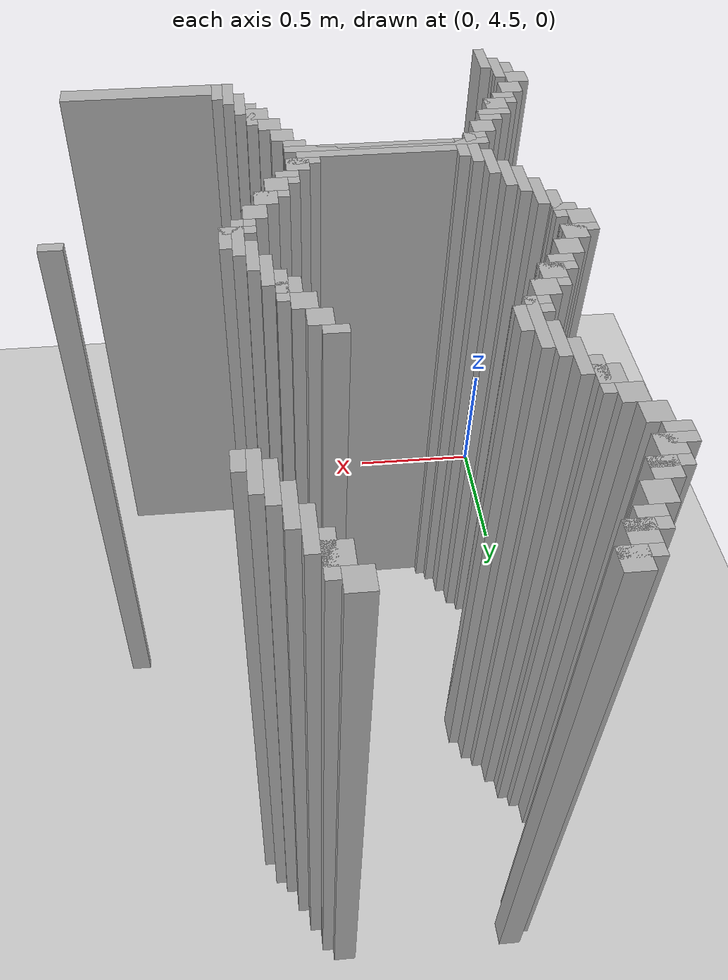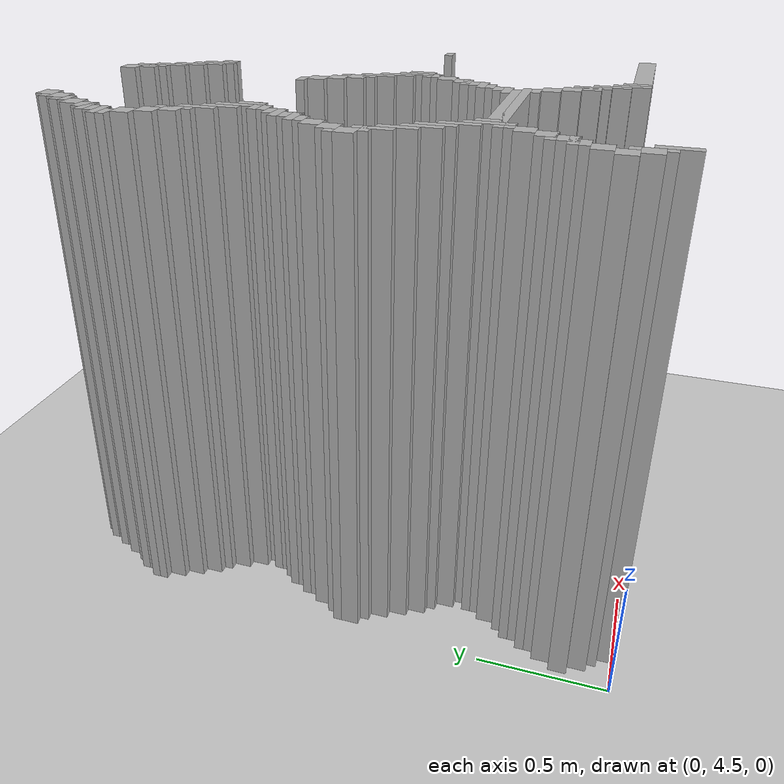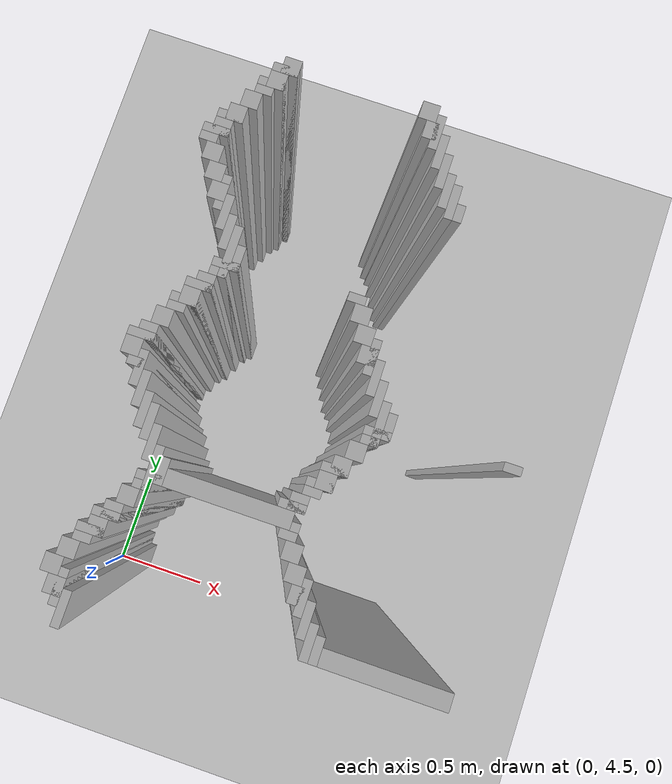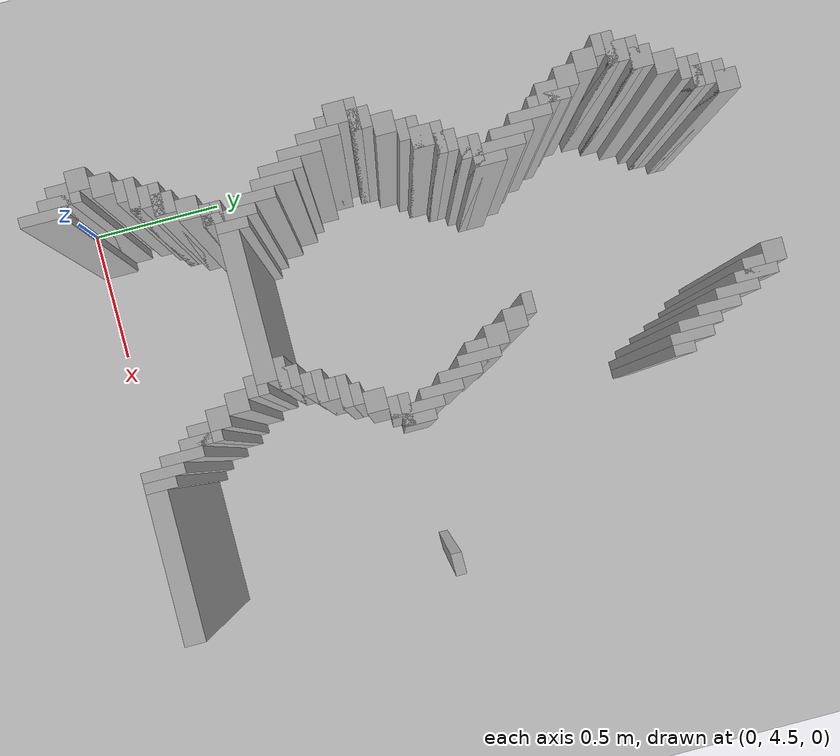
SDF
<sdf version="1.6">
 <world name="slam_world">
  <model name="ground_plane">
   <static>true</static>
   <link name="link">
    <collision name="collision">
     <geometry><plane><normal>0 0 1</normal><size>100 100</size></plane></geometry>
    </collision>
    <visual name="visual">
     <geometry><plane><normal>0 0 1</normal><size>100 100</size></plane></geometry>
     <material>
      <ambient>0.8 0.8 0.8 1</ambient>
      <diffuse>0.8 0.8 0.8 1</diffuse>
      <specular>0.8 0.8 0.8 1</specular>
     </material>
    </visual>
   </link>
  </model>
  <model name="wall_3553">
   <static>true</static>
   <pose>0.27842227378190254 6.751740139211137 1.0 0 0 0</pose>
   <link name="link">
    <collision name="collision">
     <geometry><box><size>0.06960556844547564 0.06960556844547564 2.0</size></box></geometry>
    </collision>
    <visual name="visual">
     <geometry><box><size>0.06960556844547564 0.06960556844547564 2.0</size></box></geometry>
     <material><ambient>0.5 0.5 0.5 1</ambient><diffuse>0.7 0.7 0.7 1</diffuse></material>
    </visual>
   </link>
  </model>
  <model name="wall_3554">
   <static>true</static>
   <pose>0.8352668213457076 6.751740139211137 1.0 0 0 0</pose>
   <link name="link">
    <collision name="collision">
     <geometry><box><size>0.06960556844547564 0.06960556844547564 2.0</size></box></geometry>
    </collision>
    <visual name="visual">
     <geometry><box><size>0.06960556844547564 0.06960556844547564 2.0</size></box></geometry>
     <material><ambient>0.5 0.5 0.5 1</ambient><diffuse>0.7 0.7 0.7 1</diffuse></material>
    </visual>
   </link>
  </model>
  <model name="wall_3566">
   <static>true</static>
   <pose>0.2610208816705336 6.734338747099768 1.0 0 0 0</pose>
   <link name="link">
    <collision name="collision">
     <geometry><box><size>0.10440835266821345 0.03480278422273782 2.0</size></box></geometry>
    </collision>
    <visual name="visual">
     <geometry><box><size>0.10440835266821345 0.03480278422273782 2.0</size></box></geometry>
     <material><ambient>0.5 0.5 0.5 1</ambient><diffuse>0.7 0.7 0.7 1</diffuse></material>
    </visual>
   </link>
  </model>
  <model name="wall_3567">
   <static>true</static>
   <pose>0.8874709976798143 6.682134570765661 1.0 0 0 0</pose>
   <link name="link">
    <collision name="collision">
     <geometry><box><size>0.03480278422273782 0.13921113689095127 2.0</size></box></geometry>
    </collision>
    <visual name="visual">
     <geometry><box><size>0.03480278422273782 0.13921113689095127 2.0</size></box></geometry>
     <material><ambient>0.5 0.5 0.5 1</ambient><diffuse>0.7 0.7 0.7 1</diffuse></material>
    </visual>
   </link>
  </model>
  <model name="wall_3579">
   <static>true</static>
   <pose>0.24361948955916474 6.682134570765661 1.0 0 0 0</pose>
   <link name="link">
    <collision name="collision">
     <geometry><box><size>0.06960556844547564 0.06960556844547564 2.0</size></box></geometry>
    </collision>
    <visual name="visual">
     <geometry><box><size>0.06960556844547564 0.06960556844547564 2.0</size></box></geometry>
     <material><ambient>0.5 0.5 0.5 1</ambient><diffuse>0.7 0.7 0.7 1</diffuse></material>
    </visual>
   </link>
  </model>
  <model name="wall_3580">
   <static>true</static>
   <pose>0.8700696055684455 6.682134570765661 1.0 0 0 0</pose>
   <link name="link">
    <collision name="collision">
     <geometry><box><size>0.06960556844547564 0.06960556844547564 2.0</size></box></geometry>
    </collision>
    <visual name="visual">
     <geometry><box><size>0.06960556844547564 0.06960556844547564 2.0</size></box></geometry>
     <material><ambient>0.5 0.5 0.5 1</ambient><diffuse>0.7 0.7 0.7 1</diffuse></material>
    </visual>
   </link>
  </model>
  <model name="wall_3592">
   <static>true</static>
   <pose>0.2262180974477958 6.664733178654292 1.0 0 0 0</pose>
   <link name="link">
    <collision name="collision">
     <geometry><box><size>0.10440835266821345 0.03480278422273782 2.0</size></box></geometry>
    </collision>
    <visual name="visual">
     <geometry><box><size>0.10440835266821345 0.03480278422273782 2.0</size></box></geometry>
     <material><ambient>0.5 0.5 0.5 1</ambient><diffuse>0.7 0.7 0.7 1</diffuse></material>
    </visual>
   </link>
  </model>
  <model name="wall_3593">
   <static>true</static>
   <pose>0.9222737819025522 6.612529002320185 1.0 0 0 0</pose>
   <link name="link">
    <collision name="collision">
     <geometry><box><size>0.03480278422273782 0.13921113689095127 2.0</size></box></geometry>
    </collision>
    <visual name="visual">
     <geometry><box><size>0.03480278422273782 0.13921113689095127 2.0</size></box></geometry>
     <material><ambient>0.5 0.5 0.5 1</ambient><diffuse>0.7 0.7 0.7 1</diffuse></material>
    </visual>
   </link>
  </model>
  <model name="wall_3605">
   <static>true</static>
   <pose>0.2088167053364269 6.629930394431554 1.0 0 0 0</pose>
   <link name="link">
    <collision name="collision">
     <geometry><box><size>0.06960556844547564 0.03480278422273782 2.0</size></box></geometry>
    </collision>
    <visual name="visual">
     <geometry><box><size>0.06960556844547564 0.03480278422273782 2.0</size></box></geometry>
     <material><ambient>0.5 0.5 0.5 1</ambient><diffuse>0.7 0.7 0.7 1</diffuse></material>
    </visual>
   </link>
  </model>
  <model name="wall_3612">
   <static>true</static>
   <pose>0.17401392111368907 6.577726218097448 1.0 0 0 0</pose>
   <link name="link">
    <collision name="collision">
     <geometry><box><size>0.06960556844547564 0.06960556844547564 2.0</size></box></geometry>
    </collision>
    <visual name="visual">
     <geometry><box><size>0.06960556844547564 0.06960556844547564 2.0</size></box></geometry>
     <material><ambient>0.5 0.5 0.5 1</ambient><diffuse>0.7 0.7 0.7 1</diffuse></material>
    </visual>
   </link>
  </model>
  <model name="wall_3613">
   <static>true</static>
   <pose>0.95707656612529 6.5429234338747095 1.0 0 0 0</pose>
   <link name="link">
    <collision name="collision">
     <geometry><box><size>0.03480278422273782 0.13921113689095127 2.0</size></box></geometry>
    </collision>
    <visual name="visual">
     <geometry><box><size>0.03480278422273782 0.13921113689095127 2.0</size></box></geometry>
     <material><ambient>0.5 0.5 0.5 1</ambient><diffuse>0.7 0.7 0.7 1</diffuse></material>
    </visual>
   </link>
  </model>
  <model name="wall_3625">
   <static>true</static>
   <pose>0.13921113689095127 6.508120649651972 1.0 0 0 0</pose>
   <link name="link">
    <collision name="collision">
     <geometry><box><size>0.06960556844547564 0.06960556844547564 2.0</size></box></geometry>
    </collision>
    <visual name="visual">
     <geometry><box><size>0.06960556844547564 0.06960556844547564 2.0</size></box></geometry>
     <material><ambient>0.5 0.5 0.5 1</ambient><diffuse>0.7 0.7 0.7 1</diffuse></material>
    </visual>
   </link>
  </model>
  <model name="wall_3626">
   <static>true</static>
   <pose>0.9918793503480278 6.473317865429234 1.0 0 0 0</pose>
   <link name="link">
    <collision name="collision">
     <geometry><box><size>0.03480278422273782 0.13921113689095127 2.0</size></box></geometry>
    </collision>
    <visual name="visual">
     <geometry><box><size>0.03480278422273782 0.13921113689095127 2.0</size></box></geometry>
     <material><ambient>0.5 0.5 0.5 1</ambient><diffuse>0.7 0.7 0.7 1</diffuse></material>
    </visual>
   </link>
  </model>
  <model name="wall_3638">
   <static>true</static>
   <pose>0.12180974477958237 6.490719257540603 1.0 0 0 0</pose>
   <link name="link">
    <collision name="collision">
     <geometry><box><size>0.10440835266821345 0.03480278422273782 2.0</size></box></geometry>
    </collision>
    <visual name="visual">
     <geometry><box><size>0.10440835266821345 0.03480278422273782 2.0</size></box></geometry>
     <material><ambient>0.5 0.5 0.5 1</ambient><diffuse>0.7 0.7 0.7 1</diffuse></material>
    </visual>
   </link>
  </model>
  <model name="wall_3639">
   <static>true</static>
   <pose>1.0266821345707655 6.438515081206496 1.0 0 0 0</pose>
   <link name="link">
    <collision name="collision">
     <geometry><box><size>0.03480278422273782 0.13921113689095127 2.0</size></box></geometry>
    </collision>
    <visual name="visual">
     <geometry><box><size>0.03480278422273782 0.13921113689095127 2.0</size></box></geometry>
     <material><ambient>0.5 0.5 0.5 1</ambient><diffuse>0.7 0.7 0.7 1</diffuse></material>
    </visual>
   </link>
  </model>
  <model name="wall_3651">
   <static>true</static>
   <pose>0.10440835266821345 6.438515081206496 1.0 0 0 0</pose>
   <link name="link">
    <collision name="collision">
     <geometry><box><size>0.06960556844547564 0.06960556844547564 2.0</size></box></geometry>
    </collision>
    <visual name="visual">
     <geometry><box><size>0.06960556844547564 0.06960556844547564 2.0</size></box></geometry>
     <material><ambient>0.5 0.5 0.5 1</ambient><diffuse>0.7 0.7 0.7 1</diffuse></material>
    </visual>
   </link>
  </model>
  <model name="wall_3658">
   <static>true</static>
   <pose>0.08700696055684454 6.421113689095128 1.0 0 0 0</pose>
   <link name="link">
    <collision name="collision">
     <geometry><box><size>0.10440835266821345 0.03480278422273782 2.0</size></box></geometry>
    </collision>
    <visual name="visual">
     <geometry><box><size>0.10440835266821345 0.03480278422273782 2.0</size></box></geometry>
     <material><ambient>0.5 0.5 0.5 1</ambient><diffuse>0.7 0.7 0.7 1</diffuse></material>
    </visual>
   </link>
  </model>
  <model name="wall_3659">
   <static>true</static>
   <pose>1.0614849187935034 6.403712296983758 1.0 0 0 0</pose>
   <link name="link">
    <collision name="collision">
     <geometry><box><size>0.03480278422273782 0.06960556844547564 2.0</size></box></geometry>
    </collision>
    <visual name="visual">
     <geometry><box><size>0.03480278422273782 0.06960556844547564 2.0</size></box></geometry>
     <material><ambient>0.5 0.5 0.5 1</ambient><diffuse>0.7 0.7 0.7 1</diffuse></material>
    </visual>
   </link>
  </model>
  <model name="wall_3671">
   <static>true</static>
   <pose>0.06960556844547564 6.386310904872389 1.0 0 0 0</pose>
   <link name="link">
    <collision name="collision">
     <geometry><box><size>0.06960556844547564 0.03480278422273782 2.0</size></box></geometry>
    </collision>
    <visual name="visual">
     <geometry><box><size>0.06960556844547564 0.03480278422273782 2.0</size></box></geometry>
     <material><ambient>0.5 0.5 0.5 1</ambient><diffuse>0.7 0.7 0.7 1</diffuse></material>
    </visual>
   </link>
  </model>
  <model name="wall_3678">
   <static>true</static>
   <pose>0.10440835266821345 6.334106728538282 1.0 0 0 0</pose>
   <link name="link">
    <collision name="collision">
     <geometry><box><size>0.06960556844547564 0.06960556844547564 2.0</size></box></geometry>
    </collision>
    <visual name="visual">
     <geometry><box><size>0.06960556844547564 0.06960556844547564 2.0</size></box></geometry>
     <material><ambient>0.5 0.5 0.5 1</ambient><diffuse>0.7 0.7 0.7 1</diffuse></material>
    </visual>
   </link>
  </model>
  <model name="wall_3701">
   <static>true</static>
   <pose>0.13921113689095127 6.2645011600928076 1.0 0 0 0</pose>
   <link name="link">
    <collision name="collision">
     <geometry><box><size>0.06960556844547564 0.06960556844547564 2.0</size></box></geometry>
    </collision>
    <visual name="visual">
     <geometry><box><size>0.06960556844547564 0.06960556844547564 2.0</size></box></geometry>
     <material><ambient>0.5 0.5 0.5 1</ambient><diffuse>0.7 0.7 0.7 1</diffuse></material>
    </visual>
   </link>
  </model>
  <model name="wall_3714">
   <static>true</static>
   <pose>0.191415313225058 6.194895591647332 1.0 0 0 0</pose>
   <link name="link">
    <collision name="collision">
     <geometry><box><size>0.03480278422273782 0.13921113689095127 2.0</size></box></geometry>
    </collision>
    <visual name="visual">
     <geometry><box><size>0.03480278422273782 0.13921113689095127 2.0</size></box></geometry>
     <material><ambient>0.5 0.5 0.5 1</ambient><diffuse>0.7 0.7 0.7 1</diffuse></material>
    </visual>
   </link>
  </model>
  <model name="wall_3727">
   <static>true</static>
   <pose>0.17401392111368907 6.194895591647332 1.0 0 0 0</pose>
   <link name="link">
    <collision name="collision">
     <geometry><box><size>0.06960556844547564 0.06960556844547564 2.0</size></box></geometry>
    </collision>
    <visual name="visual">
     <geometry><box><size>0.06960556844547564 0.06960556844547564 2.0</size></box></geometry>
     <material><ambient>0.5 0.5 0.5 1</ambient><diffuse>0.7 0.7 0.7 1</diffuse></material>
    </visual>
   </link>
  </model>
  <model name="wall_3740">
   <static>true</static>
   <pose>0.2262180974477958 6.125290023201856 1.0 0 0 0</pose>
   <link name="link">
    <collision name="collision">
     <geometry><box><size>0.03480278422273782 0.13921113689095127 2.0</size></box></geometry>
    </collision>
    <visual name="visual">
     <geometry><box><size>0.03480278422273782 0.13921113689095127 2.0</size></box></geometry>
     <material><ambient>0.5 0.5 0.5 1</ambient><diffuse>0.7 0.7 0.7 1</diffuse></material>
    </visual>
   </link>
  </model>
  <model name="wall_3757">
   <static>true</static>
   <pose>0.2610208816705336 6.05568445475638 1.0 0 0 0</pose>
   <link name="link">
    <collision name="collision">
     <geometry><box><size>0.03480278422273782 0.13921113689095127 2.0</size></box></geometry>
    </collision>
    <visual name="visual">
     <geometry><box><size>0.03480278422273782 0.13921113689095127 2.0</size></box></geometry>
     <material><ambient>0.5 0.5 0.5 1</ambient><diffuse>0.7 0.7 0.7 1</diffuse></material>
    </visual>
   </link>
  </model>
  <model name="wall_3770">
   <static>true</static>
   <pose>0.29582366589327147 5.986078886310905 1.0 0 0 0</pose>
   <link name="link">
    <collision name="collision">
     <geometry><box><size>0.03480278422273782 0.2088167053364269 2.0</size></box></geometry>
    </collision>
    <visual name="visual">
     <geometry><box><size>0.03480278422273782 0.2088167053364269 2.0</size></box></geometry>
     <material><ambient>0.5 0.5 0.5 1</ambient><diffuse>0.7 0.7 0.7 1</diffuse></material>
    </visual>
   </link>
  </model>
  <model name="wall_3787">
   <static>true</static>
   <pose>0.3306264501160093 5.968677494199536 1.0 0 0 0</pose>
   <link name="link">
    <collision name="collision">
     <geometry><box><size>0.03480278422273782 0.10440835266821345 2.0</size></box></geometry>
    </collision>
    <visual name="visual">
     <geometry><box><size>0.03480278422273782 0.10440835266821345 2.0</size></box></geometry>
     <material><ambient>0.5 0.5 0.5 1</ambient><diffuse>0.7 0.7 0.7 1</diffuse></material>
    </visual>
   </link>
  </model>
  <model name="wall_3799">
   <static>true</static>
   <pose>0.8004640371229698 5.968677494199536 1.0 0 0 0</pose>
   <link name="link">
    <collision name="collision">
     <geometry><box><size>0.06960556844547564 0.03480278422273782 2.0</size></box></geometry>
    </collision>
    <visual name="visual">
     <geometry><box><size>0.06960556844547564 0.03480278422273782 2.0</size></box></geometry>
     <material><ambient>0.5 0.5 0.5 1</ambient><diffuse>0.7 0.7 0.7 1</diffuse></material>
    </visual>
   </link>
  </model>
  <model name="wall_3809">
   <static>true</static>
   <pose>0.29582366589327147 5.933874709976798 1.0 0 0 0</pose>
   <link name="link">
    <collision name="collision">
     <geometry><box><size>0.10440835266821345 0.03480278422273782 2.0</size></box></geometry>
    </collision>
    <visual name="visual">
     <geometry><box><size>0.10440835266821345 0.03480278422273782 2.0</size></box></geometry>
     <material><ambient>0.5 0.5 0.5 1</ambient><diffuse>0.7 0.7 0.7 1</diffuse></material>
    </visual>
   </link>
  </model>
  <model name="wall_3810">
   <static>true</static>
   <pose>0.8352668213457076 5.916473317865429 1.0 0 0 0</pose>
   <link name="link">
    <collision name="collision">
     <geometry><box><size>0.06960556844547564 0.06960556844547564 2.0</size></box></geometry>
    </collision>
    <visual name="visual">
     <geometry><box><size>0.06960556844547564 0.06960556844547564 2.0</size></box></geometry>
     <material><ambient>0.5 0.5 0.5 1</ambient><diffuse>0.7 0.7 0.7 1</diffuse></material>
    </visual>
   </link>
  </model>
  <model name="wall_3825">
   <static>true</static>
   <pose>0.27842227378190254 5.89907192575406 1.0 0 0 0</pose>
   <link name="link">
    <collision name="collision">
     <geometry><box><size>0.06960556844547564 0.03480278422273782 2.0</size></box></geometry>
    </collision>
    <visual name="visual">
     <geometry><box><size>0.06960556844547564 0.03480278422273782 2.0</size></box></geometry>
     <material><ambient>0.5 0.5 0.5 1</ambient><diffuse>0.7 0.7 0.7 1</diffuse></material>
    </visual>
   </link>
  </model>
  <model name="wall_3838">
   <static>true</static>
   <pose>0.24361948955916474 5.846867749419953 1.0 0 0 0</pose>
   <link name="link">
    <collision name="collision">
     <geometry><box><size>0.06960556844547564 0.06960556844547564 2.0</size></box></geometry>
    </collision>
    <visual name="visual">
     <geometry><box><size>0.06960556844547564 0.06960556844547564 2.0</size></box></geometry>
     <material><ambient>0.5 0.5 0.5 1</ambient><diffuse>0.7 0.7 0.7 1</diffuse></material>
    </visual>
   </link>
  </model>
  <model name="wall_3839">
   <static>true</static>
   <pose>0.8700696055684455 5.846867749419953 1.0 0 0 0</pose>
   <link name="link">
    <collision name="collision">
     <geometry><box><size>0.06960556844547564 0.06960556844547564 2.0</size></box></geometry>
    </collision>
    <visual name="visual">
     <geometry><box><size>0.06960556844547564 0.06960556844547564 2.0</size></box></geometry>
     <material><ambient>0.5 0.5 0.5 1</ambient><diffuse>0.7 0.7 0.7 1</diffuse></material>
    </visual>
   </link>
  </model>
  <model name="wall_3854">
   <static>true</static>
   <pose>0.2262180974477958 5.8294663573085845 1.0 0 0 0</pose>
   <link name="link">
    <collision name="collision">
     <geometry><box><size>0.10440835266821345 0.03480278422273782 2.0</size></box></geometry>
    </collision>
    <visual name="visual">
     <geometry><box><size>0.10440835266821345 0.03480278422273782 2.0</size></box></geometry>
     <material><ambient>0.5 0.5 0.5 1</ambient><diffuse>0.7 0.7 0.7 1</diffuse></material>
    </visual>
   </link>
  </model>
  <model name="wall_3855">
   <static>true</static>
   <pose>0.9222737819025522 5.7772621809744775 1.0 0 0 0</pose>
   <link name="link">
    <collision name="collision">
     <geometry><box><size>0.03480278422273782 0.13921113689095127 2.0</size></box></geometry>
    </collision>
    <visual name="visual">
     <geometry><box><size>0.03480278422273782 0.13921113689095127 2.0</size></box></geometry>
     <material><ambient>0.5 0.5 0.5 1</ambient><diffuse>0.7 0.7 0.7 1</diffuse></material>
    </visual>
   </link>
  </model>
  <model name="wall_3870">
   <static>true</static>
   <pose>0.2088167053364269 5.7772621809744775 1.0 0 0 0</pose>
   <link name="link">
    <collision name="collision">
     <geometry><box><size>0.06960556844547564 0.06960556844547564 2.0</size></box></geometry>
    </collision>
    <visual name="visual">
     <geometry><box><size>0.06960556844547564 0.06960556844547564 2.0</size></box></geometry>
     <material><ambient>0.5 0.5 0.5 1</ambient><diffuse>0.7 0.7 0.7 1</diffuse></material>
    </visual>
   </link>
  </model>
  <model name="wall_3871">
   <static>true</static>
   <pose>0.9048723897911832 5.7772621809744775 1.0 0 0 0</pose>
   <link name="link">
    <collision name="collision">
     <geometry><box><size>0.06960556844547564 0.06960556844547564 2.0</size></box></geometry>
    </collision>
    <visual name="visual">
     <geometry><box><size>0.06960556844547564 0.06960556844547564 2.0</size></box></geometry>
     <material><ambient>0.5 0.5 0.5 1</ambient><diffuse>0.7 0.7 0.7 1</diffuse></material>
    </visual>
   </link>
  </model>
  <model name="wall_3883">
   <static>true</static>
   <pose>0.191415313225058 5.759860788863109 1.0 0 0 0</pose>
   <link name="link">
    <collision name="collision">
     <geometry><box><size>0.10440835266821345 0.03480278422273782 2.0</size></box></geometry>
    </collision>
    <visual name="visual">
     <geometry><box><size>0.10440835266821345 0.03480278422273782 2.0</size></box></geometry>
     <material><ambient>0.5 0.5 0.5 1</ambient><diffuse>0.7 0.7 0.7 1</diffuse></material>
    </visual>
   </link>
  </model>
  <model name="wall_3884">
   <static>true</static>
   <pose>0.95707656612529 5.707656612529002 1.0 0 0 0</pose>
   <link name="link">
    <collision name="collision">
     <geometry><box><size>0.03480278422273782 0.13921113689095127 2.0</size></box></geometry>
    </collision>
    <visual name="visual">
     <geometry><box><size>0.03480278422273782 0.13921113689095127 2.0</size></box></geometry>
     <material><ambient>0.5 0.5 0.5 1</ambient><diffuse>0.7 0.7 0.7 1</diffuse></material>
    </visual>
   </link>
  </model>
  <model name="wall_3899">
   <static>true</static>
   <pose>0.17401392111368907 5.725058004640371 1.0 0 0 0</pose>
   <link name="link">
    <collision name="collision">
     <geometry><box><size>0.06960556844547564 0.03480278422273782 2.0</size></box></geometry>
    </collision>
    <visual name="visual">
     <geometry><box><size>0.06960556844547564 0.03480278422273782 2.0</size></box></geometry>
     <material><ambient>0.5 0.5 0.5 1</ambient><diffuse>0.7 0.7 0.7 1</diffuse></material>
    </visual>
   </link>
  </model>
  <model name="wall_3907">
   <static>true</static>
   <pose>0.13921113689095127 5.672853828306264 1.0 0 0 0</pose>
   <link name="link">
    <collision name="collision">
     <geometry><box><size>0.06960556844547564 0.06960556844547564 2.0</size></box></geometry>
    </collision>
    <visual name="visual">
     <geometry><box><size>0.06960556844547564 0.06960556844547564 2.0</size></box></geometry>
     <material><ambient>0.5 0.5 0.5 1</ambient><diffuse>0.7 0.7 0.7 1</diffuse></material>
    </visual>
   </link>
  </model>
  <model name="wall_3908">
   <static>true</static>
   <pose>0.9918793503480278 5.638051044083526 1.0 0 0 0</pose>
   <link name="link">
    <collision name="collision">
     <geometry><box><size>0.03480278422273782 0.13921113689095127 2.0</size></box></geometry>
    </collision>
    <visual name="visual">
     <geometry><box><size>0.03480278422273782 0.13921113689095127 2.0</size></box></geometry>
     <material><ambient>0.5 0.5 0.5 1</ambient><diffuse>0.7 0.7 0.7 1</diffuse></material>
    </visual>
   </link>
  </model>
  <model name="wall_3923">
   <static>true</static>
   <pose>0.10440835266821345 5.603248259860789 1.0 0 0 0</pose>
   <link name="link">
    <collision name="collision">
     <geometry><box><size>0.06960556844547564 0.06960556844547564 2.0</size></box></geometry>
    </collision>
    <visual name="visual">
     <geometry><box><size>0.06960556844547564 0.06960556844547564 2.0</size></box></geometry>
     <material><ambient>0.5 0.5 0.5 1</ambient><diffuse>0.7 0.7 0.7 1</diffuse></material>
    </visual>
   </link>
  </model>
  <model name="wall_3924">
   <static>true</static>
   <pose>1.0266821345707655 5.551044083526682 1.0 0 0 0</pose>
   <link name="link">
    <collision name="collision">
     <geometry><box><size>0.03480278422273782 0.17401392111368907 2.0</size></box></geometry>
    </collision>
    <visual name="visual">
     <geometry><box><size>0.03480278422273782 0.17401392111368907 2.0</size></box></geometry>
     <material><ambient>0.5 0.5 0.5 1</ambient><diffuse>0.7 0.7 0.7 1</diffuse></material>
    </visual>
   </link>
  </model>
  <model name="wall_3939">
   <static>true</static>
   <pose>0.08700696055684454 5.58584686774942 1.0 0 0 0</pose>
   <link name="link">
    <collision name="collision">
     <geometry><box><size>0.10440835266821345 0.03480278422273782 2.0</size></box></geometry>
    </collision>
    <visual name="visual">
     <geometry><box><size>0.10440835266821345 0.03480278422273782 2.0</size></box></geometry>
     <material><ambient>0.5 0.5 0.5 1</ambient><diffuse>0.7 0.7 0.7 1</diffuse></material>
    </visual>
   </link>
  </model>
  <model name="wall_3940">
   <static>true</static>
   <pose>1.0614849187935034 5.551044083526682 1.0 0 0 0</pose>
   <link name="link">
    <collision name="collision">
     <geometry><box><size>0.03480278422273782 0.10440835266821345 2.0</size></box></geometry>
    </collision>
    <visual name="visual">
     <geometry><box><size>0.03480278422273782 0.10440835266821345 2.0</size></box></geometry>
     <material><ambient>0.5 0.5 0.5 1</ambient><diffuse>0.7 0.7 0.7 1</diffuse></material>
    </visual>
   </link>
  </model>
  <model name="wall_3955">
   <static>true</static>
   <pose>0.06960556844547564 5.533642691415313 1.0 0 0 0</pose>
   <link name="link">
    <collision name="collision">
     <geometry><box><size>0.06960556844547564 0.06960556844547564 2.0</size></box></geometry>
    </collision>
    <visual name="visual">
     <geometry><box><size>0.06960556844547564 0.06960556844547564 2.0</size></box></geometry>
     <material><ambient>0.5 0.5 0.5 1</ambient><diffuse>0.7 0.7 0.7 1</diffuse></material>
    </visual>
   </link>
  </model>
  <model name="wall_3956">
   <static>true</static>
   <pose>1.531322505800464 5.551044083526682 1.0 0 0 0</pose>
   <link name="link">
    <collision name="collision">
     <geometry><box><size>0.06960556844547564 0.03480278422273782 2.0</size></box></geometry>
    </collision>
    <visual name="visual">
     <geometry><box><size>0.06960556844547564 0.03480278422273782 2.0</size></box></geometry>
     <material><ambient>0.5 0.5 0.5 1</ambient><diffuse>0.7 0.7 0.7 1</diffuse></material>
    </visual>
   </link>
  </model>
  <model name="wall_3967">
   <static>true</static>
   <pose>0.12180974477958237 5.464037122969837 1.0 0 0 0</pose>
   <link name="link">
    <collision name="collision">
     <geometry><box><size>0.03480278422273782 0.13921113689095127 2.0</size></box></geometry>
    </collision>
    <visual name="visual">
     <geometry><box><size>0.03480278422273782 0.13921113689095127 2.0</size></box></geometry>
     <material><ambient>0.5 0.5 0.5 1</ambient><diffuse>0.7 0.7 0.7 1</diffuse></material>
    </visual>
   </link>
  </model>
  <model name="wall_3968">
   <static>true</static>
   <pose>1.0266821345707655 5.516241299303944 1.0 0 0 0</pose>
   <link name="link">
    <collision name="collision">
     <geometry><box><size>0.10440835266821345 0.03480278422273782 2.0</size></box></geometry>
    </collision>
    <visual name="visual">
     <geometry><box><size>0.10440835266821345 0.03480278422273782 2.0</size></box></geometry>
     <material><ambient>0.5 0.5 0.5 1</ambient><diffuse>0.7 0.7 0.7 1</diffuse></material>
    </visual>
   </link>
  </model>
  <model name="wall_3984">
   <static>true</static>
   <pose>0.10440835266821345 5.481438515081206 1.0 0 0 0</pose>
   <link name="link">
    <collision name="collision">
     <geometry><box><size>0.06960556844547564 0.03480278422273782 2.0</size></box></geometry>
    </collision>
    <visual name="visual">
     <geometry><box><size>0.06960556844547564 0.03480278422273782 2.0</size></box></geometry>
     <material><ambient>0.5 0.5 0.5 1</ambient><diffuse>0.7 0.7 0.7 1</diffuse></material>
    </visual>
   </link>
  </model>
  <model name="wall_3985">
   <static>true</static>
   <pose>1.0092807424593968 5.481438515081206 1.0 0 0 0</pose>
   <link name="link">
    <collision name="collision">
     <geometry><box><size>0.06960556844547564 0.03480278422273782 2.0</size></box></geometry>
    </collision>
    <visual name="visual">
     <geometry><box><size>0.06960556844547564 0.03480278422273782 2.0</size></box></geometry>
     <material><ambient>0.5 0.5 0.5 1</ambient><diffuse>0.7 0.7 0.7 1</diffuse></material>
    </visual>
   </link>
  </model>
  <model name="wall_3997">
   <static>true</static>
   <pose>0.15661252900232017 5.3944315545243615 1.0 0 0 0</pose>
   <link name="link">
    <collision name="collision">
     <geometry><box><size>0.03480278422273782 0.13921113689095127 2.0</size></box></geometry>
    </collision>
    <visual name="visual">
     <geometry><box><size>0.03480278422273782 0.13921113689095127 2.0</size></box></geometry>
     <material><ambient>0.5 0.5 0.5 1</ambient><diffuse>0.7 0.7 0.7 1</diffuse></material>
    </visual>
   </link>
  </model>
  <model name="wall_3998">
   <static>true</static>
   <pose>0.974477958236659 5.4292343387471 1.0 0 0 0</pose>
   <link name="link">
    <collision name="collision">
     <geometry><box><size>0.06960556844547564 0.06960556844547564 2.0</size></box></geometry>
    </collision>
    <visual name="visual">
     <geometry><box><size>0.06960556844547564 0.06960556844547564 2.0</size></box></geometry>
     <material><ambient>0.5 0.5 0.5 1</ambient><diffuse>0.7 0.7 0.7 1</diffuse></material>
    </visual>
   </link>
  </model>
  <model name="wall_4010">
   <static>true</static>
   <pose>0.191415313225058 5.324825986078886 1.0 0 0 0</pose>
   <link name="link">
    <collision name="collision">
     <geometry><box><size>0.03480278422273782 0.13921113689095127 2.0</size></box></geometry>
    </collision>
    <visual name="visual">
     <geometry><box><size>0.03480278422273782 0.13921113689095127 2.0</size></box></geometry>
     <material><ambient>0.5 0.5 0.5 1</ambient><diffuse>0.7 0.7 0.7 1</diffuse></material>
    </visual>
   </link>
  </model>
  <model name="wall_4011">
   <static>true</static>
   <pose>0.9396751740139211 5.359628770301624 1.0 0 0 0</pose>
   <link name="link">
    <collision name="collision">
     <geometry><box><size>0.06960556844547564 0.06960556844547564 2.0</size></box></geometry>
    </collision>
    <visual name="visual">
     <geometry><box><size>0.06960556844547564 0.06960556844547564 2.0</size></box></geometry>
     <material><ambient>0.5 0.5 0.5 1</ambient><diffuse>0.7 0.7 0.7 1</diffuse></material>
    </visual>
   </link>
  </model>
  <model name="wall_4023">
   <static>true</static>
   <pose>0.2262180974477958 5.290023201856148 1.0 0 0 0</pose>
   <link name="link">
    <collision name="collision">
     <geometry><box><size>0.03480278422273782 0.13921113689095127 2.0</size></box></geometry>
    </collision>
    <visual name="visual">
     <geometry><box><size>0.03480278422273782 0.13921113689095127 2.0</size></box></geometry>
     <material><ambient>0.5 0.5 0.5 1</ambient><diffuse>0.7 0.7 0.7 1</diffuse></material>
    </visual>
   </link>
  </model>
  <model name="wall_4024">
   <static>true</static>
   <pose>0.9222737819025522 5.342227378190255 1.0 0 0 0</pose>
   <link name="link">
    <collision name="collision">
     <geometry><box><size>0.10440835266821345 0.03480278422273782 2.0</size></box></geometry>
    </collision>
    <visual name="visual">
     <geometry><box><size>0.10440835266821345 0.03480278422273782 2.0</size></box></geometry>
     <material><ambient>0.5 0.5 0.5 1</ambient><diffuse>0.7 0.7 0.7 1</diffuse></material>
    </visual>
   </link>
  </model>
  <model name="wall_4036">
   <static>true</static>
   <pose>0.9048723897911832 5.290023201856148 1.0 0 0 0</pose>
   <link name="link">
    <collision name="collision">
     <geometry><box><size>0.06960556844547564 0.06960556844547564 2.0</size></box></geometry>
    </collision>
    <visual name="visual">
     <geometry><box><size>0.06960556844547564 0.06960556844547564 2.0</size></box></geometry>
     <material><ambient>0.5 0.5 0.5 1</ambient><diffuse>0.7 0.7 0.7 1</diffuse></material>
    </visual>
   </link>
  </model>
  <model name="wall_4043">
   <static>true</static>
   <pose>0.2610208816705336 5.220417633410673 1.0 0 0 0</pose>
   <link name="link">
    <collision name="collision">
     <geometry><box><size>0.03480278422273782 0.13921113689095127 2.0</size></box></geometry>
    </collision>
    <visual name="visual">
     <geometry><box><size>0.03480278422273782 0.13921113689095127 2.0</size></box></geometry>
     <material><ambient>0.5 0.5 0.5 1</ambient><diffuse>0.7 0.7 0.7 1</diffuse></material>
    </visual>
   </link>
  </model>
  <model name="wall_4044">
   <static>true</static>
   <pose>0.8874709976798143 5.27262180974478 1.0 0 0 0</pose>
   <link name="link">
    <collision name="collision">
     <geometry><box><size>0.10440835266821345 0.03480278422273782 2.0</size></box></geometry>
    </collision>
    <visual name="visual">
     <geometry><box><size>0.10440835266821345 0.03480278422273782 2.0</size></box></geometry>
     <material><ambient>0.5 0.5 0.5 1</ambient><diffuse>0.7 0.7 0.7 1</diffuse></material>
    </visual>
   </link>
  </model>
  <model name="wall_4056">
   <static>true</static>
   <pose>0.8700696055684455 5.237819025522041 1.0 0 0 0</pose>
   <link name="link">
    <collision name="collision">
     <geometry><box><size>0.06960556844547564 0.03480278422273782 2.0</size></box></geometry>
    </collision>
    <visual name="visual">
     <geometry><box><size>0.06960556844547564 0.03480278422273782 2.0</size></box></geometry>
     <material><ambient>0.5 0.5 0.5 1</ambient><diffuse>0.7 0.7 0.7 1</diffuse></material>
    </visual>
   </link>
  </model>
  <model name="wall_4062">
   <static>true</static>
   <pose>0.29582366589327147 5.133410672853828 1.0 0 0 0</pose>
   <link name="link">
    <collision name="collision">
     <geometry><box><size>0.03480278422273782 0.17401392111368907 2.0</size></box></geometry>
    </collision>
    <visual name="visual">
     <geometry><box><size>0.03480278422273782 0.17401392111368907 2.0</size></box></geometry>
     <material><ambient>0.5 0.5 0.5 1</ambient><diffuse>0.7 0.7 0.7 1</diffuse></material>
    </visual>
   </link>
  </model>
  <model name="wall_4063">
   <static>true</static>
   <pose>0.8352668213457076 5.185614849187935 1.0 0 0 0</pose>
   <link name="link">
    <collision name="collision">
     <geometry><box><size>0.06960556844547564 0.06960556844547564 2.0</size></box></geometry>
    </collision>
    <visual name="visual">
     <geometry><box><size>0.06960556844547564 0.06960556844547564 2.0</size></box></geometry>
     <material><ambient>0.5 0.5 0.5 1</ambient><diffuse>0.7 0.7 0.7 1</diffuse></material>
    </visual>
   </link>
  </model>
  <model name="wall_4075">
   <static>true</static>
   <pose>0.3306264501160093 5.133410672853828 1.0 0 0 0</pose>
   <link name="link">
    <collision name="collision">
     <geometry><box><size>0.03480278422273782 0.10440835266821345 2.0</size></box></geometry>
    </collision>
    <visual name="visual">
     <geometry><box><size>0.03480278422273782 0.10440835266821345 2.0</size></box></geometry>
     <material><ambient>0.5 0.5 0.5 1</ambient><diffuse>0.7 0.7 0.7 1</diffuse></material>
    </visual>
   </link>
  </model>
  <model name="wall_4076">
   <static>true</static>
   <pose>0.8178654292343387 5.168213457076566 1.0 0 0 0</pose>
   <link name="link">
    <collision name="collision">
     <geometry><box><size>0.10440835266821345 0.03480278422273782 2.0</size></box></geometry>
    </collision>
    <visual name="visual">
     <geometry><box><size>0.10440835266821345 0.03480278422273782 2.0</size></box></geometry>
     <material><ambient>0.5 0.5 0.5 1</ambient><diffuse>0.7 0.7 0.7 1</diffuse></material>
    </visual>
   </link>
  </model>
  <model name="wall_4088">
   <static>true</static>
   <pose>0.5916473317865429 5.1160092807424595 1.0 0 0 0</pose>
   <link name="link">
    <collision name="collision">
     <geometry><box><size>0.4872389791183295 0.06960556844547564 2.0</size></box></geometry>
    </collision>
    <visual name="visual">
     <geometry><box><size>0.4872389791183295 0.06960556844547564 2.0</size></box></geometry>
     <material><ambient>0.5 0.5 0.5 1</ambient><diffuse>0.7 0.7 0.7 1</diffuse></material>
    </visual>
   </link>
  </model>
  <model name="wall_4098">
   <static>true</static>
   <pose>0.5568445475638051 5.09860788863109 1.0 0 0 0</pose>
   <link name="link">
    <collision name="collision">
     <geometry><box><size>0.6264501160092807 0.03480278422273782 2.0</size></box></geometry>
    </collision>
    <visual name="visual">
     <geometry><box><size>0.6264501160092807 0.03480278422273782 2.0</size></box></geometry>
     <material><ambient>0.5 0.5 0.5 1</ambient><diffuse>0.7 0.7 0.7 1</diffuse></material>
    </visual>
   </link>
  </model>
  <model name="wall_4111">
   <static>true</static>
   <pose>0.27842227378190254 5.0638051044083525 1.0 0 0 0</pose>
   <link name="link">
    <collision name="collision">
     <geometry><box><size>0.06960556844547564 0.03480278422273782 2.0</size></box></geometry>
    </collision>
    <visual name="visual">
     <geometry><box><size>0.06960556844547564 0.03480278422273782 2.0</size></box></geometry>
     <material><ambient>0.5 0.5 0.5 1</ambient><diffuse>0.7 0.7 0.7 1</diffuse></material>
    </visual>
   </link>
  </model>
  <model name="wall_4112">
   <static>true</static>
   <pose>0.8352668213457076 5.0638051044083525 1.0 0 0 0</pose>
   <link name="link">
    <collision name="collision">
     <geometry><box><size>0.06960556844547564 0.03480278422273782 2.0</size></box></geometry>
    </collision>
    <visual name="visual">
     <geometry><box><size>0.06960556844547564 0.03480278422273782 2.0</size></box></geometry>
     <material><ambient>0.5 0.5 0.5 1</ambient><diffuse>0.7 0.7 0.7 1</diffuse></material>
    </visual>
   </link>
  </model>
  <model name="wall_4126">
   <static>true</static>
   <pose>0.24361948955916474 5.0116009280742455 1.0 0 0 0</pose>
   <link name="link">
    <collision name="collision">
     <geometry><box><size>0.06960556844547564 0.06960556844547564 2.0</size></box></geometry>
    </collision>
    <visual name="visual">
     <geometry><box><size>0.06960556844547564 0.06960556844547564 2.0</size></box></geometry>
     <material><ambient>0.5 0.5 0.5 1</ambient><diffuse>0.7 0.7 0.7 1</diffuse></material>
    </visual>
   </link>
  </model>
  <model name="wall_4127">
   <static>true</static>
   <pose>0.8700696055684455 5.0116009280742455 1.0 0 0 0</pose>
   <link name="link">
    <collision name="collision">
     <geometry><box><size>0.06960556844547564 0.06960556844547564 2.0</size></box></geometry>
    </collision>
    <visual name="visual">
     <geometry><box><size>0.06960556844547564 0.06960556844547564 2.0</size></box></geometry>
     <material><ambient>0.5 0.5 0.5 1</ambient><diffuse>0.7 0.7 0.7 1</diffuse></material>
    </visual>
   </link>
  </model>
  <model name="wall_4141">
   <static>true</static>
   <pose>0.2088167053364269 4.94199535962877 1.0 0 0 0</pose>
   <link name="link">
    <collision name="collision">
     <geometry><box><size>0.06960556844547564 0.06960556844547564 2.0</size></box></geometry>
    </collision>
    <visual name="visual">
     <geometry><box><size>0.06960556844547564 0.06960556844547564 2.0</size></box></geometry>
     <material><ambient>0.5 0.5 0.5 1</ambient><diffuse>0.7 0.7 0.7 1</diffuse></material>
    </visual>
   </link>
  </model>
  <model name="wall_4142">
   <static>true</static>
   <pose>0.9048723897911832 4.94199535962877 1.0 0 0 0</pose>
   <link name="link">
    <collision name="collision">
     <geometry><box><size>0.06960556844547564 0.06960556844547564 2.0</size></box></geometry>
    </collision>
    <visual name="visual">
     <geometry><box><size>0.06960556844547564 0.06960556844547564 2.0</size></box></geometry>
     <material><ambient>0.5 0.5 0.5 1</ambient><diffuse>0.7 0.7 0.7 1</diffuse></material>
    </visual>
   </link>
  </model>
  <model name="wall_4156">
   <static>true</static>
   <pose>0.191415313225058 4.924593967517401 1.0 0 0 0</pose>
   <link name="link">
    <collision name="collision">
     <geometry><box><size>0.10440835266821345 0.03480278422273782 2.0</size></box></geometry>
    </collision>
    <visual name="visual">
     <geometry><box><size>0.10440835266821345 0.03480278422273782 2.0</size></box></geometry>
     <material><ambient>0.5 0.5 0.5 1</ambient><diffuse>0.7 0.7 0.7 1</diffuse></material>
    </visual>
   </link>
  </model>
  <model name="wall_4157">
   <static>true</static>
   <pose>0.95707656612529 4.872389791183294 1.0 0 0 0</pose>
   <link name="link">
    <collision name="collision">
     <geometry><box><size>0.03480278422273782 0.13921113689095127 2.0</size></box></geometry>
    </collision>
    <visual name="visual">
     <geometry><box><size>0.03480278422273782 0.13921113689095127 2.0</size></box></geometry>
     <material><ambient>0.5 0.5 0.5 1</ambient><diffuse>0.7 0.7 0.7 1</diffuse></material>
    </visual>
   </link>
  </model>
  <model name="wall_4171">
   <static>true</static>
   <pose>0.17401392111368907 4.872389791183294 1.0 0 0 0</pose>
   <link name="link">
    <collision name="collision">
     <geometry><box><size>0.06960556844547564 0.06960556844547564 2.0</size></box></geometry>
    </collision>
    <visual name="visual">
     <geometry><box><size>0.06960556844547564 0.06960556844547564 2.0</size></box></geometry>
     <material><ambient>0.5 0.5 0.5 1</ambient><diffuse>0.7 0.7 0.7 1</diffuse></material>
    </visual>
   </link>
  </model>
  <model name="wall_4172">
   <static>true</static>
   <pose>0.9396751740139211 4.872389791183294 1.0 0 0 0</pose>
   <link name="link">
    <collision name="collision">
     <geometry><box><size>0.06960556844547564 0.06960556844547564 2.0</size></box></geometry>
    </collision>
    <visual name="visual">
     <geometry><box><size>0.06960556844547564 0.06960556844547564 2.0</size></box></geometry>
     <material><ambient>0.5 0.5 0.5 1</ambient><diffuse>0.7 0.7 0.7 1</diffuse></material>
    </visual>
   </link>
  </model>
  <model name="wall_4181">
   <static>true</static>
   <pose>0.15661252900232017 4.854988399071925 1.0 0 0 0</pose>
   <link name="link">
    <collision name="collision">
     <geometry><box><size>0.10440835266821345 0.03480278422273782 2.0</size></box></geometry>
    </collision>
    <visual name="visual">
     <geometry><box><size>0.10440835266821345 0.03480278422273782 2.0</size></box></geometry>
     <material><ambient>0.5 0.5 0.5 1</ambient><diffuse>0.7 0.7 0.7 1</diffuse></material>
    </visual>
   </link>
  </model>
  <model name="wall_4182">
   <static>true</static>
   <pose>0.9918793503480278 4.802784222737819 1.0 0 0 0</pose>
   <link name="link">
    <collision name="collision">
     <geometry><box><size>0.03480278422273782 0.13921113689095127 2.0</size></box></geometry>
    </collision>
    <visual name="visual">
     <geometry><box><size>0.03480278422273782 0.13921113689095127 2.0</size></box></geometry>
     <material><ambient>0.5 0.5 0.5 1</ambient><diffuse>0.7 0.7 0.7 1</diffuse></material>
    </visual>
   </link>
  </model>
  <model name="wall_4196">
   <static>true</static>
   <pose>0.13921113689095127 4.820185614849188 1.0 0 0 0</pose>
   <link name="link">
    <collision name="collision">
     <geometry><box><size>0.06960556844547564 0.03480278422273782 2.0</size></box></geometry>
    </collision>
    <visual name="visual">
     <geometry><box><size>0.06960556844547564 0.03480278422273782 2.0</size></box></geometry>
     <material><ambient>0.5 0.5 0.5 1</ambient><diffuse>0.7 0.7 0.7 1</diffuse></material>
    </visual>
   </link>
  </model>
  <model name="wall_4203">
   <static>true</static>
   <pose>0.10440835266821345 4.767981438515081 1.0 0 0 0</pose>
   <link name="link">
    <collision name="collision">
     <geometry><box><size>0.06960556844547564 0.06960556844547564 2.0</size></box></geometry>
    </collision>
    <visual name="visual">
     <geometry><box><size>0.06960556844547564 0.06960556844547564 2.0</size></box></geometry>
     <material><ambient>0.5 0.5 0.5 1</ambient><diffuse>0.7 0.7 0.7 1</diffuse></material>
    </visual>
   </link>
  </model>
  <model name="wall_4204">
   <static>true</static>
   <pose>1.0266821345707655 4.7331786542923435 1.0 0 0 0</pose>
   <link name="link">
    <collision name="collision">
     <geometry><box><size>0.03480278422273782 0.13921113689095127 2.0</size></box></geometry>
    </collision>
    <visual name="visual">
     <geometry><box><size>0.03480278422273782 0.13921113689095127 2.0</size></box></geometry>
     <material><ambient>0.5 0.5 0.5 1</ambient><diffuse>0.7 0.7 0.7 1</diffuse></material>
    </visual>
   </link>
  </model>
  <model name="wall_4218">
   <static>true</static>
   <pose>1.0614849187935034 4.715777262180974 1.0 0 0 0</pose>
   <link name="link">
    <collision name="collision">
     <geometry><box><size>0.03480278422273782 0.10440835266821345 2.0</size></box></geometry>
    </collision>
    <visual name="visual">
     <geometry><box><size>0.03480278422273782 0.10440835266821345 2.0</size></box></geometry>
     <material><ambient>0.5 0.5 0.5 1</ambient><diffuse>0.7 0.7 0.7 1</diffuse></material>
    </visual>
   </link>
  </model>
  <model name="wall_4232">
   <static>true</static>
   <pose>0.06960556844547564 4.698375870069605 1.0 0 0 0</pose>
   <link name="link">
    <collision name="collision">
     <geometry><box><size>0.06960556844547564 0.06960556844547564 2.0</size></box></geometry>
    </collision>
    <visual name="visual">
     <geometry><box><size>0.06960556844547564 0.06960556844547564 2.0</size></box></geometry>
     <material><ambient>0.5 0.5 0.5 1</ambient><diffuse>0.7 0.7 0.7 1</diffuse></material>
    </visual>
   </link>
  </model>
  <model name="wall_4233">
   <static>true</static>
   <pose>1.322505800464037 4.698375870069605 1.0 0 0 0</pose>
   <link name="link">
    <collision name="collision">
     <geometry><box><size>0.4872389791183295 0.06960556844547564 2.0</size></box></geometry>
    </collision>
    <visual name="visual">
     <geometry><box><size>0.4872389791183295 0.06960556844547564 2.0</size></box></geometry>
     <material><ambient>0.5 0.5 0.5 1</ambient><diffuse>0.7 0.7 0.7 1</diffuse></material>
    </visual>
   </link>
  </model>
  <model name="wall_4244">
   <static>true</static>
   <pose>0.12180974477958237 4.6287703016241295 1.0 0 0 0</pose>
   <link name="link">
    <collision name="collision">
     <geometry><box><size>0.03480278422273782 0.13921113689095127 2.0</size></box></geometry>
    </collision>
    <visual name="visual">
     <geometry><box><size>0.03480278422273782 0.13921113689095127 2.0</size></box></geometry>
     <material><ambient>0.5 0.5 0.5 1</ambient><diffuse>0.7 0.7 0.7 1</diffuse></material>
    </visual>
   </link>
  </model>
  <model name="wall_4254">
   <static>true</static>
   <pose>0.10440835266821345 4.6287703016241295 1.0 0 0 0</pose>
   <link name="link">
    <collision name="collision">
     <geometry><box><size>0.06960556844547564 0.06960556844547564 2.0</size></box></geometry>
    </collision>
    <visual name="visual">
     <geometry><box><size>0.06960556844547564 0.06960556844547564 2.0</size></box></geometry>
     <material><ambient>0.5 0.5 0.5 1</ambient><diffuse>0.7 0.7 0.7 1</diffuse></material>
    </visual>
   </link>
  </model>
  <model name="wall_4265">
   <static>true</static>
   <pose>0.15661252900232017 4.559164733178654 1.0 0 0 0</pose>
   <link name="link">
    <collision name="collision">
     <geometry><box><size>0.03480278422273782 0.13921113689095127 2.0</size></box></geometry>
    </collision>
    <visual name="visual">
     <geometry><box><size>0.03480278422273782 0.13921113689095127 2.0</size></box></geometry>
     <material><ambient>0.5 0.5 0.5 1</ambient><diffuse>0.7 0.7 0.7 1</diffuse></material>
    </visual>
   </link>
  </model>
 </world>
</sdf>
